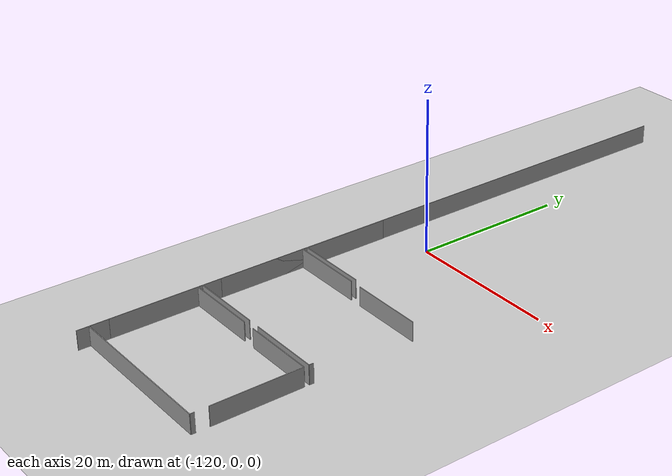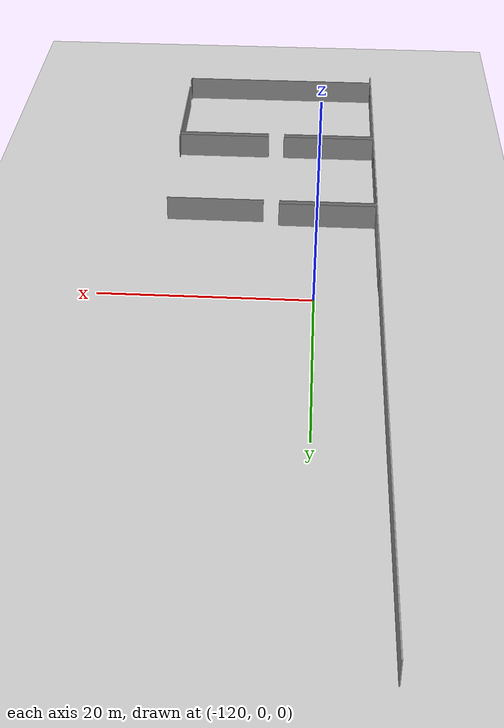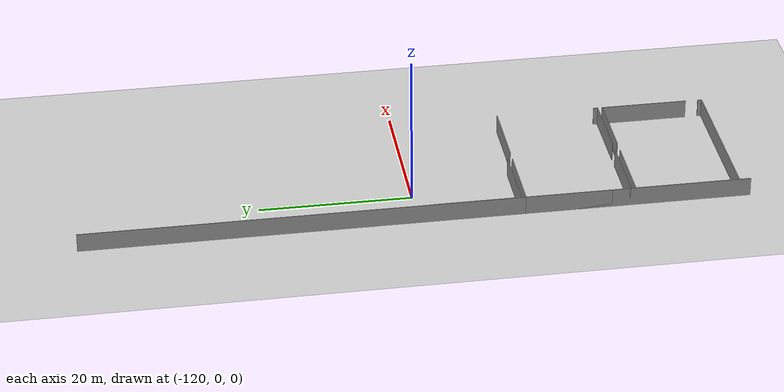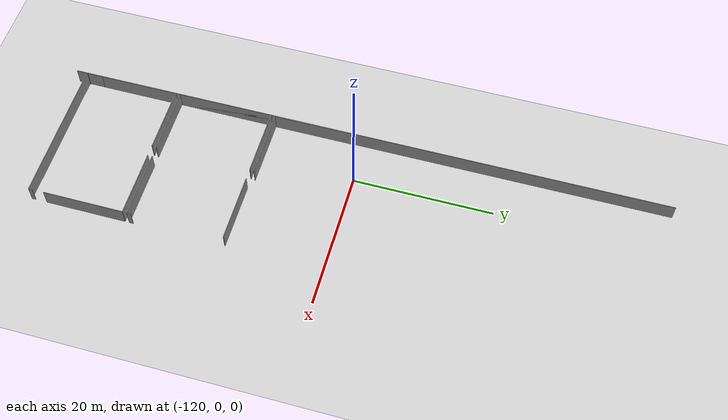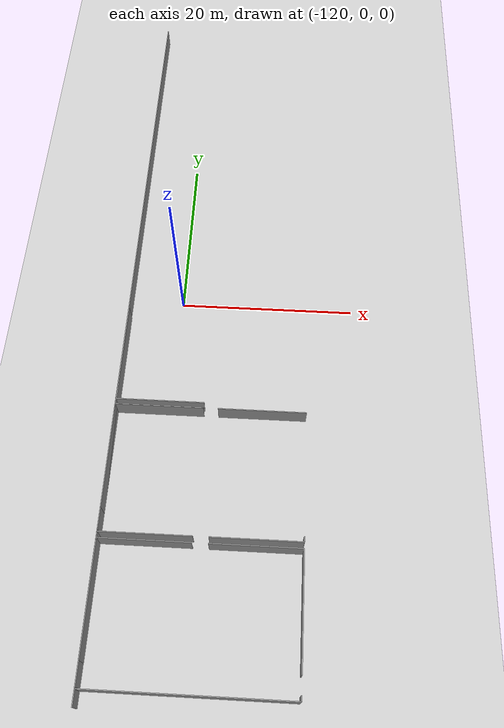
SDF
<sdf version="1.6">
 <world name="default">
  <model name="ground_plane">
   <static>1</static>
   <link name="link">
    <collision name="collision">
     <geometry><plane><normal>0 0 1</normal><size>100 100</size></plane></geometry>
     <surface><friction><ode><mu>100</mu><mu2>50</mu2></ode></friction></surface>
    </collision>
    <visual name="visual">
     <cast_shadows>0</cast_shadows>
     <geometry><plane><normal>0 0 1</normal><size>100 100</size></plane></geometry>
     <material>
      <script><uri>file://media/materials/scripts/gazebo.material</uri><name>Gazebo/Grey</name></script>
     </material>
    </visual>
   </link>
  </model>
  <model name="50015849">
   <static>1</static>
   <link name="Wall_36">
    <collision name="Wall_36_Collision">
     <geometry><box><size>9.66145287584 0.1 2.5</size></box></geometry>
     <pose>4.83072643792 0 1.25 0 0 0</pose>
    </collision>
    <visual name="Wall_36_Visual">
     <pose>4.83072643792 0 1.25 0 0 0</pose>
     <geometry><box><size>9.66145287584 0.1 2.5</size></box></geometry>
     <material>
      <script><uri>file://media/materials/scripts/gazebo.material</uri><name>Gazebo/Grey</name></script>
      <ambient>1 1 1 1</ambient>
     </material>
    </visual>
    <pose>9.71200314987 -57.0628766662 0 0 0 3.14159265359</pose>
   </link>
   <link name="Wall_37">
    <collision name="Wall_37_Collision">
     <geometry><box><size>11.3329141979 0.1 2.5</size></box></geometry>
     <pose>5.66645709895 0 1.25 0 0 0</pose>
    </collision>
    <visual name="Wall_37_Visual">
     <pose>5.66645709895 0 1.25 0 0 0</pose>
     <geometry><box><size>11.3329141979 0.1 2.5</size></box></geometry>
     <material>
      <script><uri>file://media/materials/scripts/gazebo.material</uri><name>Gazebo/Grey</name></script>
      <ambient>1 1 1 1</ambient>
     </material>
    </visual>
    <pose>0.0505502740257 -57.0628766662 0 0 0 1.57079632679</pose>
   </link>
   <link name="Wall_43">
    <collision name="Wall_43_Collision">
     <geometry><box><size>9.63655877104 0.1 2.5</size></box></geometry>
     <pose>4.81827938552 0 1.25 0 0 0</pose>
    </collision>
    <visual name="Wall_43_Visual">
     <pose>4.81827938552 0 1.25 0 0 0</pose>
     <geometry><box><size>9.63655877104 0.1 2.5</size></box></geometry>
     <material>
      <script><uri>file://media/materials/scripts/gazebo.material</uri><name>Gazebo/Grey</name></script>
      <ambient>1 1 1 1</ambient>
     </material>
    </visual>
    <pose>20.9247651889 -71.4879943099 0 0 0 3.14159265359</pose>
   </link>
   <link name="Wall_44">
    <collision name="Wall_44_Collision">
     <geometry><box><size>9.67415394972 0.1 2.5</size></box></geometry>
     <pose>4.83707697486 0 1.25 0 0 0</pose>
    </collision>
    <visual name="Wall_44_Visual">
     <pose>4.83707697486 0 1.25 0 0 0</pose>
     <geometry><box><size>9.67415394972 0.1 2.5</size></box></geometry>
     <material>
      <script><uri>file://media/materials/scripts/gazebo.material</uri><name>Gazebo/Grey</name></script>
      <ambient>1 1 1 1</ambient>
     </material>
    </visual>
    <pose>9.67415394972 -71.4879943099 0 0 0 3.14159265359</pose>
   </link>
   <link name="Wall_45">
    <collision name="Wall_45_Collision">
     <geometry><box><size>0.15850940197 0.1 2.5</size></box></geometry>
     <pose>0.079254700985 0 1.25 0 0 0</pose>
    </collision>
    <visual name="Wall_45_Visual">
     <pose>0.079254700985 0 1.25 0 0 0</pose>
     <geometry><box><size>0.15850940197 0.1 2.5</size></box></geometry>
     <material>
      <script><uri>file://media/materials/scripts/gazebo.material</uri><name>Gazebo/Grey</name></script>
      <ambient>1 1 1 1</ambient>
     </material>
    </visual>
    <pose>0.0 -71.4879943099 0 0 0 1.57079632679</pose>
   </link>
   <link name="Wall_46">
    <collision name="Wall_46_Collision">
     <geometry><box><size>11.3918471807 0.1 2.5</size></box></geometry>
     <pose>5.69592359034 0 1.25 0 0 0</pose>
    </collision>
    <visual name="Wall_46_Visual">
     <pose>5.69592359034 0 1.25 0 0 0</pose>
     <geometry><box><size>11.3918471807 0.1 2.5</size></box></geometry>
     <material>
      <script><uri>file://media/materials/scripts/gazebo.material</uri><name>Gazebo/Grey</name></script>
      <ambient>1 1 1 1</ambient>
     </material>
    </visual>
    <pose>0.0 -69.0689477795 0 0 0 1.57079632679</pose>
   </link>
   <link name="Wall_47">
    <collision name="Wall_47_Collision">
     <geometry><box><size>9.66145287584 0.1 2.5</size></box></geometry>
     <pose>4.83072643792 0 1.25 0 0 0</pose>
    </collision>
    <visual name="Wall_47_Visual">
     <pose>4.83072643792 0 1.25 0 0 0</pose>
     <geometry><box><size>9.66145287584 0.1 2.5</size></box></geometry>
     <material>
      <script><uri>file://media/materials/scripts/gazebo.material</uri><name>Gazebo/Grey</name></script>
      <ambient>1 1 1 1</ambient>
     </material>
    </visual>
    <pose>0.0 -57.6771005989 0 0 0 0.0</pose>
   </link>
   <link name="Wall_48">
    <collision name="Wall_48_Collision">
     <geometry><box><size>9.66145287584 0.1 2.5</size></box></geometry>
     <pose>4.83072643792 0 1.25 0 0 0</pose>
    </collision>
    <visual name="Wall_48_Visual">
     <pose>4.83072643792 0 1.25 0 0 0</pose>
     <geometry><box><size>9.66145287584 0.1 2.5</size></box></geometry>
     <material>
      <script><uri>file://media/materials/scripts/gazebo.material</uri><name>Gazebo/Grey</name></script>
      <ambient>1 1 1 1</ambient>
     </material>
    </visual>
    <pose>11.2633123131 -57.6771005989 0 0 0 0.0</pose>
   </link>
   <link name="Wall_50">
    <collision name="Wall_50_Collision">
     <geometry><box><size>0.575104625096 0.1 2.5</size></box></geometry>
     <pose>0.287552312548 0 1.25 0 0 0</pose>
    </collision>
    <visual name="Wall_50_Visual">
     <pose>0.287552312548 0 1.25 0 0 0</pose>
     <geometry><box><size>0.575104625096 0.1 2.5</size></box></geometry>
     <material>
      <script><uri>file://media/materials/scripts/gazebo.material</uri><name>Gazebo/Grey</name></script>
      <ambient>1 1 1 1</ambient>
     </material>
    </visual>
    <pose>20.9247651889 -70.9128896848 0 0 0 -1.57079632679</pose>
   </link>
   <link name="Wall_51">
    <collision name="Wall_51_Collision">
     <geometry><box><size>20.912064115 0.1 2.5</size></box></geometry>
     <pose>10.4560320575 0 1.25 0 0 0</pose>
    </collision>
    <visual name="Wall_51_Visual">
     <pose>10.4560320575 0 1.25 0 0 0</pose>
     <geometry><box><size>20.912064115 0.1 2.5</size></box></geometry>
     <material>
      <script><uri>file://media/materials/scripts/gazebo.material</uri><name>Gazebo/Grey</name></script>
      <ambient>1 1 1 1</ambient>
     </material>
    </visual>
    <pose>20.9247651889 -85.8938063213 0 0 0 3.14159265359</pose>
   </link>
   <link name="Wall_52">
    <collision name="Wall_52_Collision">
     <geometry><box><size>0.141489962976 0.1 2.5</size></box></geometry>
     <pose>0.0707449814882 0 1.25 0 0 0</pose>
    </collision>
    <visual name="Wall_52_Visual">
     <pose>0.0707449814882 0 1.25 0 0 0</pose>
     <geometry><box><size>0.141489962976 0.1 2.5</size></box></geometry>
     <material>
      <script><uri>file://media/materials/scripts/gazebo.material</uri><name>Gazebo/Grey</name></script>
      <ambient>1 1 1 1</ambient>
     </material>
    </visual>
    <pose>0.0127010738758 -85.8938063213 0 0 0 1.57079632679</pose>
   </link>
   <link name="Wall_53">
    <collision name="Wall_53_Collision">
     <geometry><box><size>11.3740656773 0.1 2.5</size></box></geometry>
     <pose>5.68703283863 0 1.25 0 0 0</pose>
    </collision>
    <visual name="Wall_53_Visual">
     <pose>5.68703283863 0 1.25 0 0 0</pose>
     <geometry><box><size>11.3740656773 0.1 2.5</size></box></geometry>
     <material>
      <script><uri>file://media/materials/scripts/gazebo.material</uri><name>Gazebo/Grey</name></script>
      <ambient>1 1 1 1</ambient>
     </material>
    </visual>
    <pose>0.0127010738758 -83.5042262823 0 0 0 1.57079632679</pose>
   </link>
   <link name="Wall_54">
    <collision name="Wall_54_Collision">
     <geometry><box><size>9.60709227965 0.1 2.5</size></box></geometry>
     <pose>4.80354613983 0 1.25 0 0 0</pose>
    </collision>
    <visual name="Wall_54_Visual">
     <pose>4.80354613983 0 1.25 0 0 0</pose>
     <geometry><box><size>9.60709227965 0.1 2.5</size></box></geometry>
     <material>
      <script><uri>file://media/materials/scripts/gazebo.material</uri><name>Gazebo/Grey</name></script>
      <ambient>1 1 1 1</ambient>
     </material>
    </visual>
    <pose>0.0127010738758 -72.1301606051 0 0 0 0.0</pose>
   </link>
   <link name="Wall_55">
    <collision name="Wall_55_Collision">
     <geometry><box><size>9.61725313875 0.1 2.5</size></box></geometry>
     <pose>4.80862656938 0 1.25 0 0 0</pose>
    </collision>
    <visual name="Wall_55_Visual">
     <pose>4.80862656938 0 1.25 0 0 0</pose>
     <geometry><box><size>9.61725313875 0.1 2.5</size></box></geometry>
     <material>
      <script><uri>file://media/materials/scripts/gazebo.material</uri><name>Gazebo/Grey</name></script>
      <ambient>1 1 1 1</ambient>
     </material>
    </visual>
    <pose>11.3016695562 -72.1301606051 0 0 0 0.0</pose>
   </link>
   <link name="Wall_56">
    <collision name="Wall_56_Collision">
     <geometry><box><size>11.5488324538 0.1 2.5</size></box></geometry>
     <pose>5.77441622689 0 1.25 0 0 0</pose>
    </collision>
    <visual name="Wall_56_Visual">
     <pose>5.77441622689 0 1.25 0 0 0</pose>
     <geometry><box><size>11.5488324538 0.1 2.5</size></box></geometry>
     <material>
      <script><uri>file://media/materials/scripts/gazebo.material</uri><name>Gazebo/Grey</name></script>
      <ambient>1 1 1 1</ambient>
     </material>
    </visual>
    <pose>20.9189226949 -72.1301606051 0 0 0 -1.57079632679</pose>
   </link>
   <link name="Wall_57">
    <collision name="Wall_57_Collision">
     <geometry><box><size>0.528650980453 0.1 2.5</size></box></geometry>
     <pose>0.264325490226 0 1.25 0 0 0</pose>
    </collision>
    <visual name="Wall_57_Visual">
     <pose>0.264325490226 0 1.25 0 0 0</pose>
     <geometry><box><size>0.528650980453 0.1 2.5</size></box></geometry>
     <material>
      <script><uri>file://media/materials/scripts/gazebo.material</uri><name>Gazebo/Grey</name></script>
      <ambient>1 1 1 1</ambient>
     </material>
    </visual>
    <pose>20.9189226949 -85.3651876266 0 0 0 -1.55974439813</pose>
   </link>
   <link name="Wall_268">
    <collision name="Wall_268_Collision">
     <geometry><box><size>87.4425752697 0.1 2.5</size></box></geometry>
     <pose>43.7212876349 0 1.25 0 0 0</pose>
    </collision>
    <visual name="Wall_268_Visual">
     <pose>43.7212876349 0 1.25 0 0 0</pose>
     <geometry><box><size>87.4425752697 0.1 2.5</size></box></geometry>
     <material>
      <script><uri>file://media/materials/scripts/gazebo.material</uri><name>Gazebo/Grey</name></script>
      <ambient>1 1 1 1</ambient>
     </material>
    </visual>
    <pose>0.0 -87.4425752697 0 0 0 1.57079632679</pose>
   </link>
   <pose>-126.05 43.7425752697 0 0 0 0</pose>
  </model>
 </world>
</sdf>
